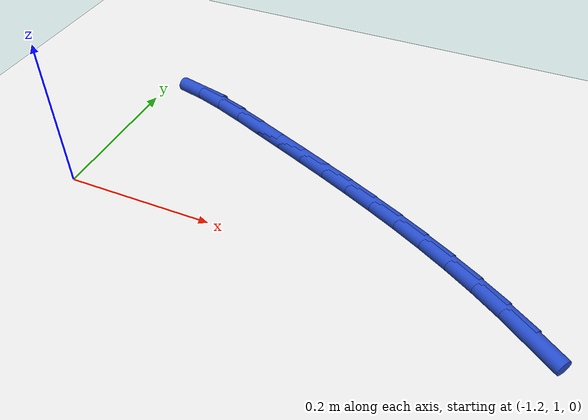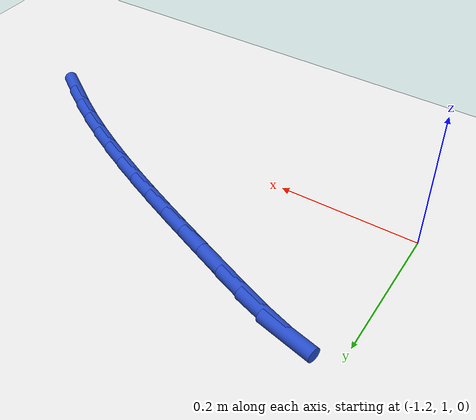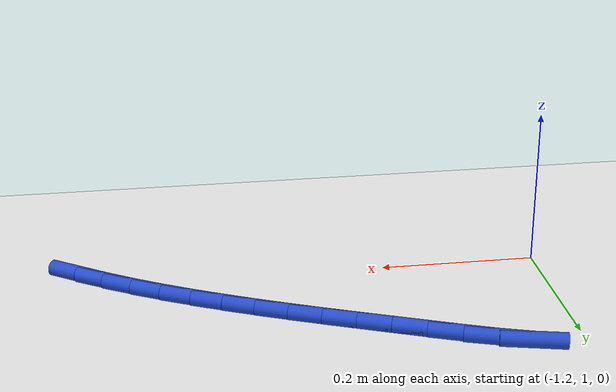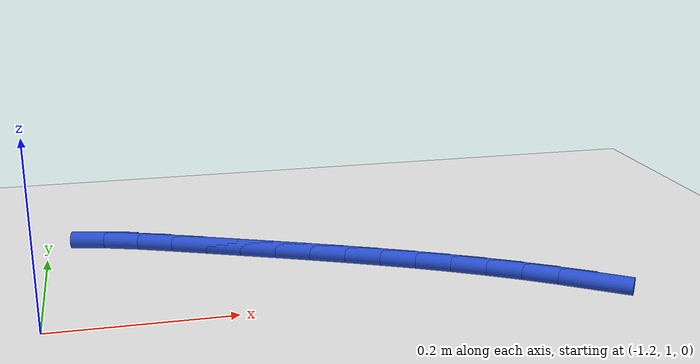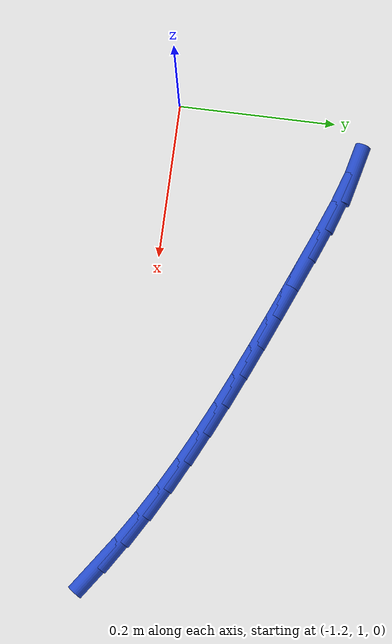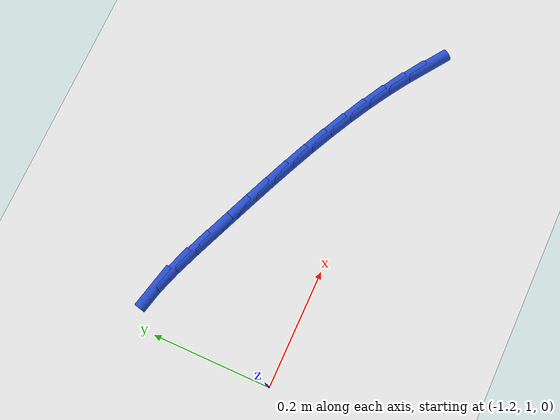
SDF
<sdf version="1.6">
 <world name="default">
  <model name="ground_plane">
   <static>1</static>
   <link name="link">
    <collision name="collision">
     <geometry><plane><normal>0 0 1</normal><size>100 100</size></plane></geometry>
     <surface><friction><ode><mu>100</mu><mu2>50</mu2></ode></friction></surface>
    </collision>
    <visual name="visual">
     <cast_shadows>0</cast_shadows>
     <geometry><plane><normal>0 0 1</normal><size>100 100</size></plane></geometry>
     <material>
      <script><uri>file://media/materials/scripts/gazebo.material</uri><name>Gazebo/WhiteGlow</name></script>
     </material>
    </visual>
   </link>
  </model>
  <model name="line">
   <link name="link_29">
    <pose>-0.6100279553583127 0.979177707190556 0.01 0 1.57 -0.6133875190062387</pose>
    <collision name="collision">
     <geometry><cylinder><radius>0.01</radius><length>0.08</length></cylinder></geometry>
    </collision>
    <visual name="visual">
     <material>
      <script><name>Gazebo/Blue</name><uri>file://media/materials/scripts/gazebo.material</uri></script>
     </material>
     <geometry><cylinder><radius>0.01</radius><length>0.08</length></cylinder></geometry>
    </visual>
   </link>
   <link name="link_30">
    <pose>-0.6429384966680294 1.0023458439021498 0.01 0 1.57 -0.5712090889973204</pose>
    <collision name="collision">
     <geometry><cylinder><radius>0.01</radius><length>0.08</length></cylinder></geometry>
    </collision>
    <visual name="visual">
     <material>
      <script><name>Gazebo/Blue</name><uri>file://media/materials/scripts/gazebo.material</uri></script>
     </material>
     <geometry><cylinder><radius>0.01</radius><length>0.08</length></cylinder></geometry>
    </visual>
   </link>
   <link name="link_31">
    <pose>-0.6769359430313754 1.024195176797474 0.01 0 1.57 -0.5336456454774711</pose>
    <collision name="collision">
     <geometry><cylinder><radius>0.01</radius><length>0.08</length></cylinder></geometry>
    </collision>
    <visual name="visual">
     <material>
      <script><name>Gazebo/Blue</name><uri>file://media/materials/scripts/gazebo.material</uri></script>
     </material>
     <geometry><cylinder><radius>0.01</radius><length>0.08</length></cylinder></geometry>
    </visual>
   </link>
   <link name="link_32">
    <pose>-0.7119201246139927 1.0448646956796472 0.01 0 1.57 -0.5006957187528024</pose>
    <collision name="collision">
     <geometry><cylinder><radius>0.01</radius><length>0.08</length></cylinder></geometry>
    </collision>
    <visual name="visual">
     <material>
      <script><name>Gazebo/Blue</name><uri>file://media/materials/scripts/gazebo.material</uri></script>
     </material>
     <geometry><cylinder><radius>0.01</radius><length>0.08</length></cylinder></geometry>
    </visual>
   </link>
   <link name="link_33">
    <pose>-0.7477908715815234 1.0644933903517881 0.01 0 1.57 -0.47230197898137316</pose>
    <collision name="collision">
     <geometry><cylinder><radius>0.01</radius><length>0.08</length></cylinder></geometry>
    </collision>
    <visual name="visual">
     <material>
      <script><name>Gazebo/Blue</name><uri>file://media/materials/scripts/gazebo.material</uri></script>
     </material>
     <geometry><cylinder><radius>0.01</radius><length>0.08</length></cylinder></geometry>
    </visual>
   </link>
   <link name="link_34">
    <pose>-0.7844480140996094 1.0832202506170168 0.01 0 1.57 -0.44837275368523705</pose>
    <collision name="collision">
     <geometry><cylinder><radius>0.01</radius><length>0.08</length></cylinder></geometry>
    </collision>
    <visual name="visual">
     <material>
      <script><name>Gazebo/Blue</name><uri>file://media/materials/scripts/gazebo.material</uri></script>
     </material>
     <geometry><cylinder><radius>0.01</radius><length>0.08</length></cylinder></geometry>
    </visual>
   </link>
   <link name="link_35">
    <pose>-0.8217913823338924 1.101184266278451 0.01 0 1.57 -0.4287997376437991</pose>
    <collision name="collision">
     <geometry><cylinder><radius>0.01</radius><length>0.08</length></cylinder></geometry>
    </collision>
    <visual name="visual">
     <material>
      <script><name>Gazebo/Blue</name><uri>file://media/materials/scripts/gazebo.material</uri></script>
     </material>
     <geometry><cylinder><radius>0.01</radius><length>0.08</length></cylinder></geometry>
    </visual>
   </link>
   <link name="link_36">
    <pose>-0.8597208064500153 1.118524427139211 0.01 0 1.57 -0.413471768891797</pose>
    <collision name="collision">
     <geometry><cylinder><radius>0.01</radius><length>0.08</length></cylinder></geometry>
    </collision>
    <visual name="visual">
     <material>
      <script><name>Gazebo/Blue</name><uri>file://media/materials/scripts/gazebo.material</uri></script>
     </material>
     <geometry><cylinder><radius>0.01</radius><length>0.08</length></cylinder></geometry>
    </visual>
   </link>
   <link name="link_37">
    <pose>-0.8981361166136194 1.135379723002415 0.01 0 1.57 -0.40228499665362893</pose>
    <collision name="collision">
     <geometry><cylinder><radius>0.01</radius><length>0.08</length></cylinder></geometry>
    </collision>
    <visual name="visual">
     <material>
      <script><name>Gazebo/Blue</name><uri>file://media/materials/scripts/gazebo.material</uri></script>
     </material>
     <geometry><cylinder><radius>0.01</radius><length>0.08</length></cylinder></geometry>
    </visual>
   </link>
   <link name="link_38">
    <pose>-0.9369371429903467 1.1518891436711822 0.01 0 1.57 -0.3951499590194412</pose>
    <collision name="collision">
     <geometry><cylinder><radius>0.01</radius><length>0.08</length></cylinder></geometry>
    </collision>
    <visual name="visual">
     <material>
      <script><name>Gazebo/Blue</name><uri>file://media/materials/scripts/gazebo.material</uri></script>
     </material>
     <geometry><cylinder><radius>0.01</radius><length>0.08</length></cylinder></geometry>
    </visual>
   </link>
   <link name="link_39">
    <pose>-0.9760237157458398 1.1681916789486322 0.01 0 1.57 -0.39199610895010006</pose>
    <collision name="collision">
     <geometry><cylinder><radius>0.01</radius><length>0.08</length></cylinder></geometry>
    </collision>
    <visual name="visual">
     <material>
      <script><name>Gazebo/Blue</name><uri>file://media/materials/scripts/gazebo.material</uri></script>
     </material>
     <geometry><cylinder><radius>0.01</radius><length>0.08</length></cylinder></geometry>
    </visual>
   </link>
   <link name="link_40">
    <pose>-1.01529566504574 1.1844263186378834 0.01 0 1.57 -0.391101688546585</pose>
    <collision name="collision">
     <geometry><cylinder><radius>0.01</radius><length>0.08</length></cylinder></geometry>
    </collision>
    <visual name="visual">
     <material>
      <script><name>Gazebo/Blue</name><uri>file://media/materials/scripts/gazebo.material</uri></script>
     </material>
     <geometry><cylinder><radius>0.01</radius><length>0.08</length></cylinder></geometry>
    </visual>
   </link>
   <link name="link_41">
    <pose>-1.0546501262420773 1.2006538684443004 0.01 0 1.57 -0.37277670339789604</pose>
    <collision name="collision">
     <geometry><cylinder><radius>0.01</radius><length>0.08</length></cylinder></geometry>
    </collision>
    <visual name="visual">
     <material>
      <script><name>Gazebo/Blue</name><uri>file://media/materials/scripts/gazebo.material</uri></script>
     </material>
     <geometry><cylinder><radius>0.01</radius><length>0.08</length></cylinder></geometry>
    </visual>
   </link>
   <link name="link_42">
    <pose>-1.0939528170214006 1.216023619518849 0.01 0 1.57 -0.32266676043413783</pose>
    <collision name="collision">
     <geometry><cylinder><radius>0.01</radius><length>0.08</length></cylinder></geometry>
    </collision>
    <visual name="visual">
     <material>
      <script><name>Gazebo/Blue</name><uri>file://media/materials/scripts/gazebo.material</uri></script>
     </material>
     <geometry><cylinder><radius>0.01</radius><length>0.08</length></cylinder></geometry>
    </visual>
   </link>
   <link name="link_43">
    <pose>-1.1330491425732208 1.2290955405277602 0.01 0 1.57 -0.2362228765012109</pose>
    <collision name="collision">
     <geometry><cylinder><radius>0.01</radius><length>0.08</length></cylinder></geometry>
    </collision>
    <visual name="visual">
     <material>
      <script><name>Gazebo/Blue</name><uri>file://media/materials/scripts/gazebo.material</uri></script>
     </material>
     <geometry><cylinder><radius>0.01</radius><length>0.08</length></cylinder></geometry>
    </visual>
   </link>
  </model>
 </world>
</sdf>
